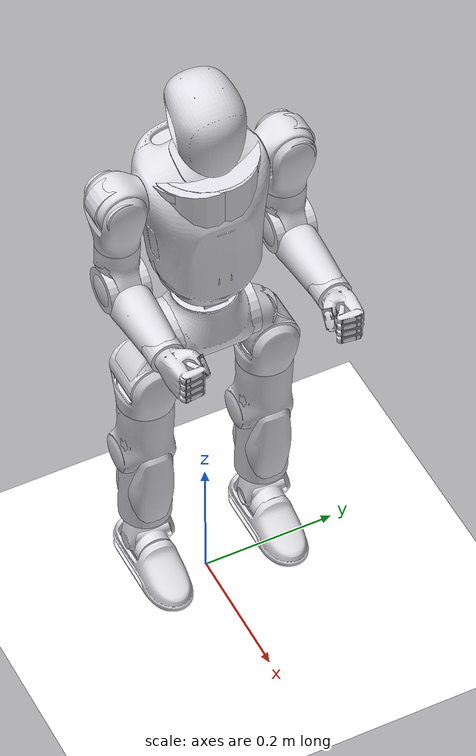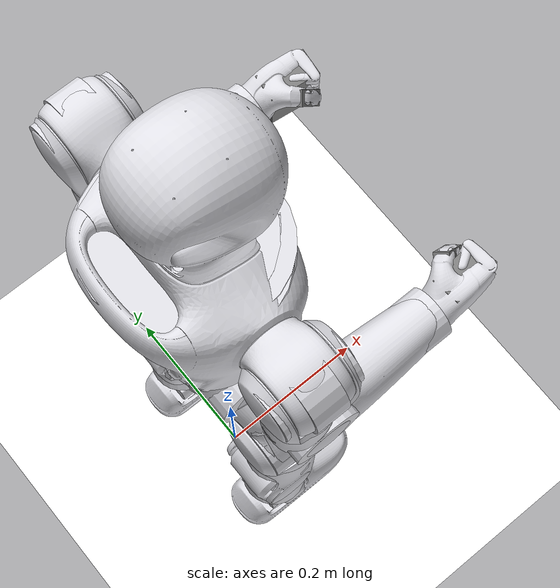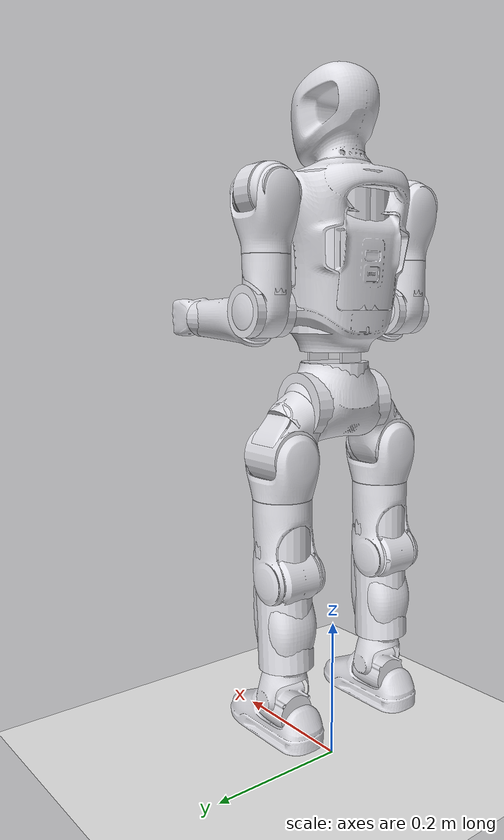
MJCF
<mujoco model="q1_v3">
  <compiler angle="radian" meshdir="../meshes/"/>

  <asset>
    <mesh name="pelvis" file="pelvis.STL"/>
    <mesh name="left_hip_pitch_link" file="left_hip_pitch_link.STL"/>
    <mesh name="left_hip_roll_link" file="left_hip_roll_link.STL"/>
    <mesh name="left_hip_yaw_link" file="left_hip_yaw_link.STL"/>
    <mesh name="left_knee_link" file="left_knee_link.STL"/>
    <mesh name="left_ankle_pitch_link" file="left_ankle_pitch_link.STL"/>
    <mesh name="left_ankle_roll_link" file="left_ankle_roll_link.STL"/>
    <mesh name="right_hip_pitch_link" file="right_hip_pitch_link.STL"/>
    <mesh name="right_hip_roll_link" file="right_hip_roll_link.STL"/>
    <mesh name="right_hip_yaw_link" file="right_hip_yaw_link.STL"/>
    <mesh name="right_knee_link" file="right_knee_link.STL"/>
    <mesh name="right_ankle_pitch_link" file="right_ankle_pitch_link.STL"/>
    <mesh name="right_ankle_roll_link" file="right_ankle_roll_link.STL"/>
    <mesh name="waist_roll_link" file="waist_roll_link.STL"/>
    <mesh name="torso_link" file="torso_link.STL"/>
    <mesh name="left_shoulder_pitch_link" file="left_shoulder_pitch_link.STL"/>
    <mesh name="left_shoulder_roll_link" file="left_shoulder_roll_link.STL"/>
    <mesh name="left_shoulder_yaw_link" file="left_shoulder_yaw_link.STL"/>
    <mesh name="left_elbow_link" file="left_elbow_link.STL"/>
    <mesh name="right_shoulder_pitch_link" file="right_shoulder_pitch_link.STL"/>
    <mesh name="right_shoulder_roll_link" file="right_shoulder_roll_link.STL"/>
    <mesh name="right_shoulder_yaw_link" file="right_shoulder_yaw_link.STL"/>
    <mesh name="right_elbow_link" file="right_elbow_link.STL"/>
    <mesh name="head_link" file="head_link.STL"/>
  </asset>

  <worldbody>
    <body name="pelvis" pos="0 0 0.48">
      <site name="imu_0" pos="0 0 0" group="3"/>
      <freejoint name="floating_base_joint"/>
      <inertial pos="0.002043 -4e-06 0.049044" quat="0.706783 0.706709 0.0227929 -0.0223788" mass="1.82817" diaginertia="0.00420386 0.00301114 0.002489"/>
      <geom type="mesh" contype="0" conaffinity="0" group="1" density="0" rgba="0.86667 0.86667 0.8902 1" mesh="pelvis"/>
      <geom size="0.045 0.065" pos="0 0 0.039" quat="0.707388 0.706825 0 0" type="cylinder" rgba="0.86667 0.86667 0.8902 1"/>
      <geom size="0.046 0.0275" pos="0 0 0.069" type="cylinder" rgba="0.86667 0.86667 0.8902 1"/>
      <body name="left_hip_pitch_link" pos="0.0015 0.067658 0.021375" quat="0.984807 -0.17365 0 0">
        <inertial pos="0.002982 0.032002 -0.02996" quat="0.704807 0.202825 -0.229109 0.640015" mass="0.71997" diaginertia="0.000641483 0.000618569 0.000443948"/>
        <joint name="left_hip_pitch_joint" pos="0 0 0" axis="0 1 0" range="-3.0543 1.5708" actuatorfrcrange="-36 36"/>
        <geom type="mesh" contype="0" conaffinity="0" group="1" density="0" rgba="0.86667 0.86667 0.8902 1" mesh="left_hip_pitch_link"/>
        <geom size="0.033 0.02" quat="0.796084 0.605186 0 0" type="cylinder" rgba="0.86667 0.86667 0.8902 1"/>
        <geom size="0.037 0.033" pos="0 0.038 -0.035" quat="0.707388 0 0.706825 0" type="cylinder" rgba="0.86667 0.86667 0.8902 1"/>
        <body name="left_hip_roll_link" pos="0 0.036796 -0.034098" quat="0.984807 0.17365 0 0">
          <inertial pos="0.001846 0.000235 -0.022324" quat="0.511877 0.483806 0.485721 0.517676" mass="0.216824" diaginertia="0.000304008 0.000289421 0.000172572"/>
          <joint name="left_hip_roll_joint" pos="0 0 0" axis="1 0 0" range="-0.69813 1.5708" actuatorfrcrange="-36 36"/>
          <geom type="mesh" contype="0" conaffinity="0" group="1" density="0" rgba="0.86667 0.86667 0.8902 1" mesh="left_hip_roll_link"/>
          <geom size="0.035 0.015" pos="0 0.003 -0.045" type="cylinder" rgba="0.86667 0.86667 0.8902 1"/>
          <body name="left_hip_yaw_link" pos="0 0 -0.05825">
            <inertial pos="-0.00062 0.000254 -0.032699" quat="0.999054 0.0137649 0.0397719 0.010919" mass="0.774729" diaginertia="0.00142033 0.00131246 0.000589209"/>
            <joint name="left_hip_yaw_joint" pos="0 0 0" axis="0 0 1" range="-1.5708 1.5708" actuatorfrcrange="-36 36"/>
            <geom type="mesh" contype="0" conaffinity="0" group="1" density="0" rgba="0.86667 0.86667 0.8902 1" mesh="left_hip_yaw_link"/>
            <geom size="0.038 0.04" pos="0 0 -0.04" type="cylinder" rgba="0.86667 0.86667 0.8902 1"/>
            <body name="left_knee_link" pos="-0.015 0 -0.107">
              <inertial pos="0.007981 0.001666 -0.042278" quat="0.666768 -0.0415489 -0.037101 0.743181" mass="1.14063" diaginertia="0.00330334 0.00327456 0.000778108"/>
              <joint name="left_knee_joint" pos="0 0 0" axis="0 1 0" range="0 2.4435" actuatorfrcrange="-36 36"/>
              <geom type="mesh" contype="0" conaffinity="0" group="1" density="0" rgba="0.86667 0.86667 0.8902 1" mesh="left_knee_link"/>
              <geom size="0.038 0.075" pos="0.011 0 -0.051" quat="0.999688 0 0.0249974 0" type="cylinder" rgba="0.86667 0.86667 0.8902 1"/>
              <body name="left_ankle_pitch_link" pos="0.015015 0 -0.16999">
                <inertial pos="-0.006322 0.001621 0.0075" quat="0.560054 -0.0812619 -0.0123562 0.824369" mass="0.561344" diaginertia="0.001437 0.00140712 0.000263882"/>
                <joint name="left_ankle_pitch_joint" pos="0 0 0" axis="0 1 0" range="-0.7854 0.43633" actuatorfrcrange="-22 22"/>
                <geom type="mesh" contype="0" conaffinity="0" group="1" density="0" rgba="0.86667 0.86667 0.8902 1" mesh="left_ankle_pitch_link"/>
                <body name="left_ankle_roll_link" pos="-0.0069 -1.5787e-05 -0.02">
                  <inertial pos="0.021254 0.000419 -0.025336" quat="0 0.717956 0 0.696089" mass="0.282436" diaginertia="0.000657526 0.000624 0.000107474"/>
                  <joint name="left_ankle_roll_joint" pos="0 0 0" axis="1 0 0" range="-0.34907 0.34907" actuatorfrcrange="-22 22"/>
                  <geom type="mesh" contype="0" conaffinity="0" group="1" density="0" rgba="0.86667 0.86667 0.8902 1" mesh="left_ankle_roll_link"/>
                  <geom type="mesh" rgba="0.86667 0.86667 0.8902 1" mesh="left_ankle_roll_link"/>
                </body>
              </body>
            </body>
          </body>
        </body>
      </body>
      <body name="right_hip_pitch_link" pos="0.0015 -0.067658 0.021375" quat="0.984807 0.17365 0 0">
        <inertial pos="0.002982 -0.032044 -0.029887" quat="0.609536 -0.222403 0.210026 0.731363" mass="0.719985" diaginertia="0.000641946 0.000618245 0.000443809"/>
        <joint name="right_hip_pitch_joint" pos="0 0 0" axis="0 1 0" range="-3.0543 1.5708" actuatorfrcrange="-36 36"/>
        <geom type="mesh" contype="0" conaffinity="0" group="1" density="0" rgba="0.86667 0.86667 0.8902 1" mesh="right_hip_pitch_link"/>
        <geom size="0.033 0.02" quat="0.796084 -0.605186 0 0" type="cylinder" rgba="0.86667 0.86667 0.8902 1"/>
        <geom size="0.037 0.033" pos="0 -0.038 -0.035" quat="0.707388 0 0.706825 0" type="cylinder" rgba="0.86667 0.86667 0.8902 1"/>
        <body name="right_hip_roll_link" pos="0 -0.036796 -0.034098" quat="0.984807 -0.17365 0 0">
          <inertial pos="0.001847 0.000175 -0.022324" quat="0.49112 0.499198 0.469964 0.537342" mass="0.216808" diaginertia="0.000304114 0.000289336 0.000172551"/>
          <joint name="right_hip_roll_joint" pos="0 0 0" axis="1 0 0" range="-1.5708 0.69813" actuatorfrcrange="-36 36"/>
          <geom type="mesh" contype="0" conaffinity="0" group="1" density="0" rgba="0.86667 0.86667 0.8902 1" mesh="right_hip_roll_link"/>
          <geom size="0.035 0.015" pos="0 -0.003 -0.045" type="cylinder" rgba="0.86667 0.86667 0.8902 1"/>
          <body name="right_hip_yaw_link" pos="0 0 -0.05825">
            <inertial pos="-0.00062 -0.000295 -0.032699" quat="0.999054 -0.0137649 0.0397719 -0.010919" mass="0.774706" diaginertia="0.00142033 0.00131246 0.000589209"/>
            <joint name="right_hip_yaw_joint" pos="0 0 0" axis="0 0 1" range="-1.5708 1.5708" actuatorfrcrange="-36 36"/>
            <geom type="mesh" contype="0" conaffinity="0" group="1" density="0" rgba="0.86667 0.86667 0.8902 1" mesh="right_hip_yaw_link"/>
            <geom size="0.038 0.04" pos="0 0 -0.04" type="cylinder" rgba="0.86667 0.86667 0.8902 1"/>
            <body name="right_knee_link" pos="-0.015 0 -0.107">
              <inertial pos="0.007983 -0.001681 -0.042258" quat="0.754104 -0.0363968 -0.0421087 0.654393" mass="1.14014" diaginertia="0.00330458 0.00327529 0.000777133"/>
              <joint name="right_knee_joint" pos="0 0 0" axis="0 1 0" range="0 2.4435" actuatorfrcrange="-36 36"/>
              <geom type="mesh" contype="0" conaffinity="0" group="1" density="0" rgba="0.86667 0.86667 0.8902 1" mesh="right_knee_link"/>
              <geom size="0.038 0.075" pos="0.011 0 -0.051" quat="0.999688 0 0.0249974 0" type="cylinder" rgba="0.86667 0.86667 0.8902 1"/>
              <body name="right_ankle_pitch_link" pos="0.015015 0 -0.16999">
                <inertial pos="-0.006317 -0.001564 0.007575" quat="0.82679 -0.0123031 -0.0809007 0.556526" mass="0.561811" diaginertia="0.00143988 0.00141102 0.000265096"/>
                <joint name="right_ankle_pitch_joint" pos="0 0 0" axis="0 1 0" range="-0.7854 0.43633" actuatorfrcrange="-22 22"/>
                <geom type="mesh" contype="0" conaffinity="0" group="1" density="0" rgba="0.86667 0.86667 0.8902 1" mesh="right_ankle_pitch_link"/>
                <body name="right_ankle_roll_link" pos="-0.0069 1.5787e-05 -0.02">
                  <inertial pos="0.021254 0.000419 -0.025336" quat="0 0.717956 0 0.696089" mass="0.282436" diaginertia="0.000657526 0.000624 0.000107474"/>
                  <joint name="right_ankle_roll_joint" pos="0 0 0" axis="1 0 0" range="-0.34907 0.34907" actuatorfrcrange="-22 22"/>
                  <geom type="mesh" contype="0" conaffinity="0" group="1" density="0" rgba="0.86667 0.86667 0.8902 1" mesh="right_ankle_roll_link"/>
                  <geom type="mesh" rgba="0.86667 0.86667 0.8902 1" mesh="right_ankle_roll_link"/>
                </body>
              </body>
            </body>
          </body>
        </body>
      </body>
      <body name="waist_roll_link" pos="0.0015 0 0.0895">
        <inertial pos="0.00395 0 0.02317" quat="0.422716 0.566843 0.566843 0.422716" mass="0.146116" diaginertia="0.000149 0.000123762 6.52383e-05"/>
        <joint name="waist_roll_joint" pos="0 0 0" axis="1 0 0" range="-0.2618 0.2618" actuatorfrcrange="-36 36"/>
        <geom type="mesh" contype="0" conaffinity="0" group="1" density="0" rgba="0.86667 0.86667 0.8902 1" mesh="waist_roll_link"/>
        <body name="torso_link" pos="0 0 0.041">
          <inertial pos="-0.010367 -2.6e-05 0.109852" quat="0.998921 -0.00380185 -0.046138 -0.00372409" mass="4.15417" diaginertia="0.0220288 0.0183642 0.0117099"/>
          <joint name="waist_yaw_joint" pos="0 0 0" axis="0 0 1" range="-1.5708 1.5708" actuatorfrcrange="-36 36"/>
          <geom type="mesh" contype="0" conaffinity="0" group="1" density="0" rgba="0.86667 0.86667 0.8902 1" mesh="torso_link"/>
          <geom size="0.063 0.015" pos="-0.002 0 0.02" type="cylinder" rgba="0.86667 0.86667 0.8902 1"/>
          <geom size="0.065 0.085" pos="-0.003 0.009 0.12" type="cylinder" rgba="0.86667 0.86667 0.8902 1"/>
          <geom size="0.065 0.085" pos="-0.003 -0.009 0.12" type="cylinder" rgba="0.86667 0.86667 0.8902 1"/>
          <geom size="0.074 0.0075" pos="-0.016 0.008 0.198" type="cylinder" rgba="0.86667 0.86667 0.8902 1"/>
          <geom size="0.074 0.0075" pos="-0.016 -0.008 0.195" type="cylinder" rgba="0.86667 0.86667 0.8902 1"/>
          <body name="left_shoulder_pitch_link" pos="-0.01 0.086836 0.17439" quat="0.999048 0.0436192 0 0">
            <inertial pos="0.003739 0.034673 -0.000115" quat="0.707107 0.707107 0 0" mass="0.372709" diaginertia="0.00016 0.000157 0.000146"/>
            <joint name="left_shoulder_pitch_joint" pos="0 0 0" axis="0 1 0" range="-3.1416 1.5708" actuatorfrcrange="-22 22"/>
            <geom type="mesh" contype="0" conaffinity="0" group="1" density="0" rgba="0.86667 0.86667 0.8902 1" mesh="left_shoulder_pitch_link"/>
            <geom size="0.035 0.015" pos="0 0.039 0" quat="0.707388 0 0.706825 0" type="cylinder" rgba="0.86667 0.86667 0.8902 1"/>
            <geom size="0.026 0.035" pos="0 0.039 0" quat="0.707388 0 0.706825 0" type="cylinder" rgba="0.86667 0.86667 0.8902 1"/>
            <body name="left_shoulder_roll_link" pos="0 0.0358 0" quat="0.999048 -0.0436192 0 0">
              <inertial pos="0.000769 0.000155 -0.058737" quat="0.706773 0.0488387 0.0558773 0.703537" mass="0.402293" diaginertia="0.000404021 0.000348285 0.000197695"/>
              <joint name="left_shoulder_roll_joint" pos="0 0 0" axis="1 0 0" range="-0.087266 2.7925" actuatorfrcrange="-22 22"/>
              <geom type="mesh" contype="0" conaffinity="0" group="1" density="0" rgba="0.86667 0.86667 0.8902 1" mesh="left_shoulder_roll_link"/>
              <geom size="0.03 0.024" pos="0 0 -0.049" type="cylinder" rgba="0.86667 0.86667 0.8902 1"/>
              <body name="left_shoulder_yaw_link" pos="0 0 -0.0736">
                <inertial pos="0.008348 -0.000885 -0.063901" quat="0.653556 -0.085802 -0.0826761 0.747441" mass="0.392666" diaginertia="0.000246112 0.000240494 0.000140394"/>
                <joint name="left_shoulder_yaw_joint" pos="0 0 0" axis="0 0 1" range="-1.5708 1.5708" actuatorfrcrange="-22 22"/>
                <geom type="mesh" contype="0" conaffinity="0" group="1" density="0" rgba="0.86667 0.86667 0.8902 1" mesh="left_shoulder_yaw_link"/>
                <geom size="0.03 0.0245" pos="0 0 -0.025" type="cylinder" rgba="0.86667 0.86667 0.8902 1"/>
                <geom size="0.033 0.03" pos="0.01 0 -0.07" quat="0.707388 0.706825 0 0" type="cylinder" rgba="0.86667 0.86667 0.8902 1"/>
                <body name="left_elbow_link" pos="0.01 0 -0.0706">
                  <inertial pos="0.095102 -0.003258 -0.00698" quat="0.0651313 0.709572 0.0747808 0.69762" mass="0.300554" diaginertia="0.0015336 0.00150404 0.000152355"/>
                  <joint name="left_elbow_joint" pos="0 0 0" axis="0 1 0" range="-0.87266 1.6581" actuatorfrcrange="-22 22"/>
                  <geom type="mesh" contype="0" conaffinity="0" group="1" density="0" rgba="0.86667 0.86667 0.8902 1" mesh="left_elbow_link"/>
                  <geom size="0.025 0.03" pos="0.04 0 -0.015" quat="0.748499 0 0.663135 0" type="cylinder" rgba="0.86667 0.86667 0.8902 1"/>
                  <geom size="0.025 0.035" pos="0.105 0 -0.01" quat="0.707388 0 0.706825 0" type="cylinder" rgba="0.86667 0.86667 0.8902 1"/>
                  <body name="left_wrist_yaw_link" pos="0.126588 0 -0.01">
                    <inertial pos="-0.08 0 0" quat="0.820473 0.339851 -0.17592 0.424708" mass="0.02" diaginertia="1.02e-05 9.9e-06 9.9e-06"/>
                    <geom size="0.025 0.014 0.0225" pos="0.051 -0.005 0.001" quat="0.998201 0 0 -0.059964" type="box"/>
                    <geom size="0.014 0.005 0.0075" pos="0.054 -0.028 0.011" quat="0.854872 -0.340303 0.376156 0.109057" type="box"/>
                  </body>
                </body>
              </body>
            </body>
          </body>
          <body name="right_shoulder_pitch_link" pos="-0.01 -0.086836 0.17439" quat="0.999048 -0.0436192 0 0">
            <inertial pos="0.003756 -0.034638 -0.00017" quat="0.707107 0.707107 0 0" mass="0.373107" diaginertia="0.000161 0.000157 0.000146"/>
            <joint name="right_shoulder_pitch_joint" pos="0 0 0" axis="0 1 0" range="-3.1416 1.5708" actuatorfrcrange="-22 22"/>
            <geom type="mesh" contype="0" conaffinity="0" group="1" density="0" rgba="0.86667 0.86667 0.8902 1" mesh="right_shoulder_pitch_link"/>
            <geom size="0.035 0.015" pos="0 -0.039 0" quat="0.707388 0 0.706825 0" type="cylinder" rgba="0.86667 0.86667 0.8902 1"/>
            <geom size="0.026 0.035" pos="0 -0.039 0" quat="0.707388 0 0.706825 0" type="cylinder" rgba="0.86667 0.86667 0.8902 1"/>
            <body name="right_shoulder_roll_link" pos="0 -0.0358 0" quat="0.999048 0.0436192 0 0">
              <inertial pos="0.000848 -0.000152 -0.058719" quat="0.703322 0.0580922 0.0510837 0.706649" mass="0.402539" diaginertia="0.00040602 0.000349583 0.000198397"/>
              <joint name="right_shoulder_roll_joint" pos="0 0 0" axis="1 0 0" range="-2.7925 0.087266" actuatorfrcrange="-22 22"/>
              <geom type="mesh" contype="0" conaffinity="0" group="1" density="0" rgba="0.86667 0.86667 0.8902 1" mesh="right_shoulder_roll_link"/>
              <geom size="0.03 0.024" pos="0 0 -0.049" type="cylinder" rgba="0.86667 0.86667 0.8902 1"/>
              <body name="right_shoulder_yaw_link" pos="0 0 -0.0736">
                <inertial pos="0.008305 0.000904 -0.063854" quat="0.747441 -0.0826761 -0.085802 0.653556" mass="0.393132" diaginertia="0.000246112 0.000240494 0.000140394"/>
                <joint name="right_shoulder_yaw_joint" pos="0 0 0" axis="0 0 1" range="-1.5708 1.5708" actuatorfrcrange="-22 22"/>
                <geom type="mesh" contype="0" conaffinity="0" group="1" density="0" rgba="0.86667 0.86667 0.8902 1" mesh="right_shoulder_yaw_link"/>
                <geom size="0.03 0.0245" pos="0 0 -0.025" type="cylinder" rgba="0.86667 0.86667 0.8902 1"/>
                <geom size="0.033 0.03" pos="0.01 0 -0.07" quat="0.707388 0.706825 0 0" type="cylinder" rgba="0.86667 0.86667 0.8902 1"/>
                <body name="right_elbow_link" pos="0.01 0 -0.0706">
                  <inertial pos="0.095035 0.003297 -0.006968" quat="-0.0647467 0.709547 -0.0748914 0.697669" mass="0.300774" diaginertia="0.00153659 0.00150707 0.000152332"/>
                  <joint name="right_elbow_joint" pos="0 0 0" axis="0 1 0" range="-0.87266 1.6581" actuatorfrcrange="-22 22"/>
                  <geom type="mesh" contype="0" conaffinity="0" group="1" density="0" rgba="0.86667 0.86667 0.8902 1" mesh="right_elbow_link"/>
                  <geom size="0.025 0.03" pos="0.04 0 -0.015" quat="0.748499 0 0.663135 0" type="cylinder" rgba="0.86667 0.86667 0.8902 1"/>
                  <geom size="0.025 0.035" pos="0.105 0 -0.01" quat="0.707388 0 0.706825 0" type="cylinder" rgba="0.86667 0.86667 0.8902 1"/>
                  <body name="right_wrist_yaw_link" pos="0.126588 0 -0.01">
                    <inertial pos="-0.08 0 0" quat="0.820473 0.339851 -0.17592 0.424708" mass="0.02" diaginertia="1.02e-05 9.9e-06 9.9e-06"/>
                    <geom size="0.025 0.014 0.0225" pos="0.051 0.005 0.001" quat="0.998201 0 0 0.059964" type="box"/>
                    <geom size="0.014 0.005 0.0075" pos="0.054 0.028 0.011" quat="0.854872 0.340303 0.376156 -0.109057" type="box"/>
                  </body>
                </body>
              </body>
            </body>
          </body>
          <body name="head_link" pos="0 0 0.2625">
            <inertial pos="0.00646 -0.000509 0.015466" quat="0.695973 -0.170276 -0.172273 0.675981" mass="0.419239" diaginertia="0.00116721 0.000913876 0.000795918"/>
            <geom type="mesh" contype="0" conaffinity="0" group="1" density="0" rgba="0.86667 0.86667 0.8902 1" mesh="head_link"/>
            <geom type="mesh" rgba="0.86667 0.86667 0.8902 1" mesh="head_link"/>
          </body>
        </body>
      </body>
    </body>
  </worldbody>

   <statistic center="1.0 0.7 1.0" extent="0.8"/>
  <visual>
    <headlight diffuse="0.6 0.6 0.6" ambient="0.1 0.1 0.1" specular="0.9 0.9 0.9"/>
    <rgba haze="0.15 0.25 0.35 1"/>
    <global azimuth="-140" elevation="-20" offwidth="2080" offheight="1170"/>
  </visual>
  <asset>
     <texture type="skybox" builtin="gradient" rgb1="1 1 1" rgb2="1 1 1" width="800" height="800"/>
    <texture type="2d" name="groundplane" builtin="checker" mark="edge" rgb1="1 1 1" rgb2="1 1 1" markrgb="0 0 0"
      width="300" height="300"/>
    <material name="groundplane" texture="groundplane" texuniform="true" texrepeat="5 5" reflectance="0"/>
    <texture type="skybox" builtin="gradient" rgb1=".4 .5 .6" rgb2="0 0 0" width="100" height="100"/>
    <texture builtin="flat" height="1278" mark="cross" markrgb="1 1 1" name="texgeom" random="0.01" rgb1="0.8 0.6 0.4" rgb2="0.8 0.6 0.4" type="cube" width="127"/>
    <texture name="texplane" builtin="checker" height="512" width="512" rgb1=".2 .3 .4" rgb2=".1 .15 .2" type="2d" />
    <material name="MatPlane" reflectance="0.5" shininess="0.01" specular="0.1" texrepeat="1 1" texture="texplane" texuniform="true" />
    <material name="geom" texture="texgeom" texuniform="true"/>
  </asset>
   <worldbody>
    <geom name="floor" size="0 0 0.01" type="plane" material="groundplane" contype="1" conaffinity="0" priority="1"
      friction="0.6" condim="3"/>

        <light diffuse=".5 .5 .5" pos="-3 -3 5" dir="3 3 -5" castshadow="true"/>

  </worldbody>
</mujoco>
